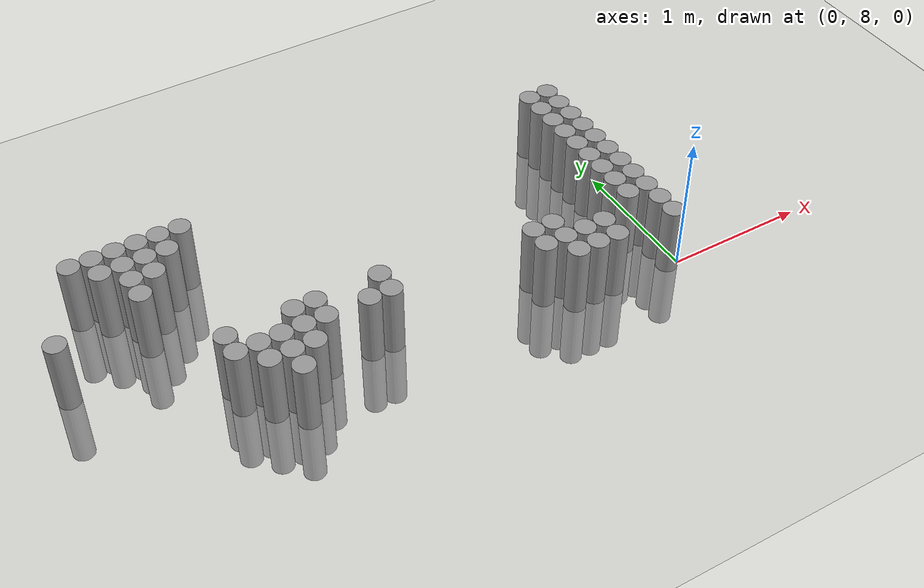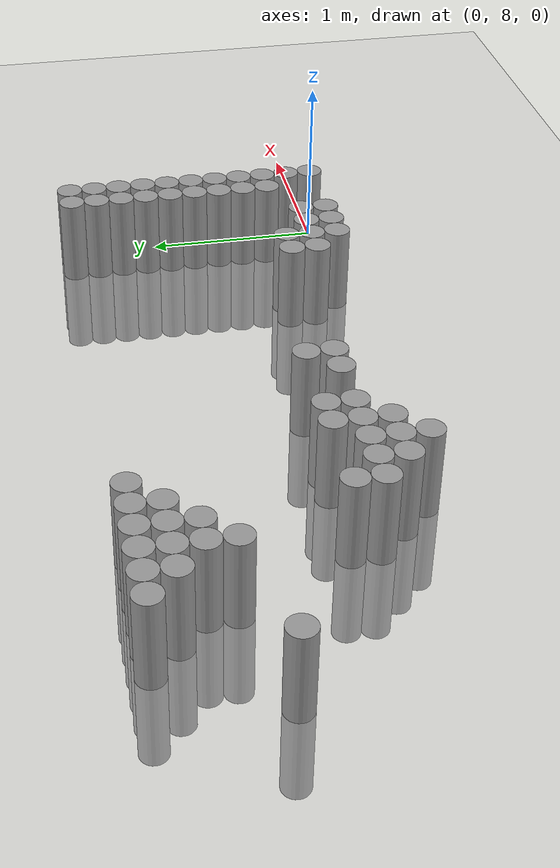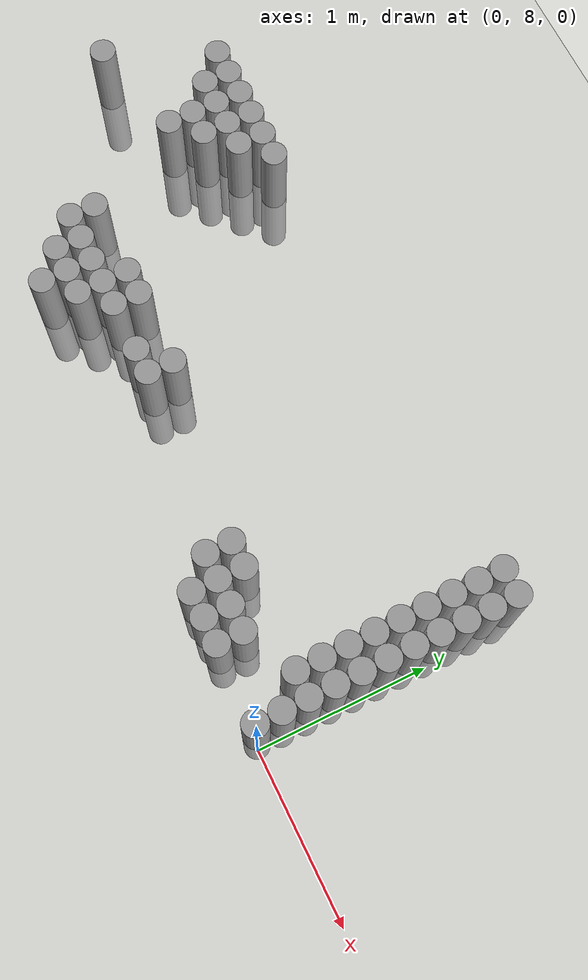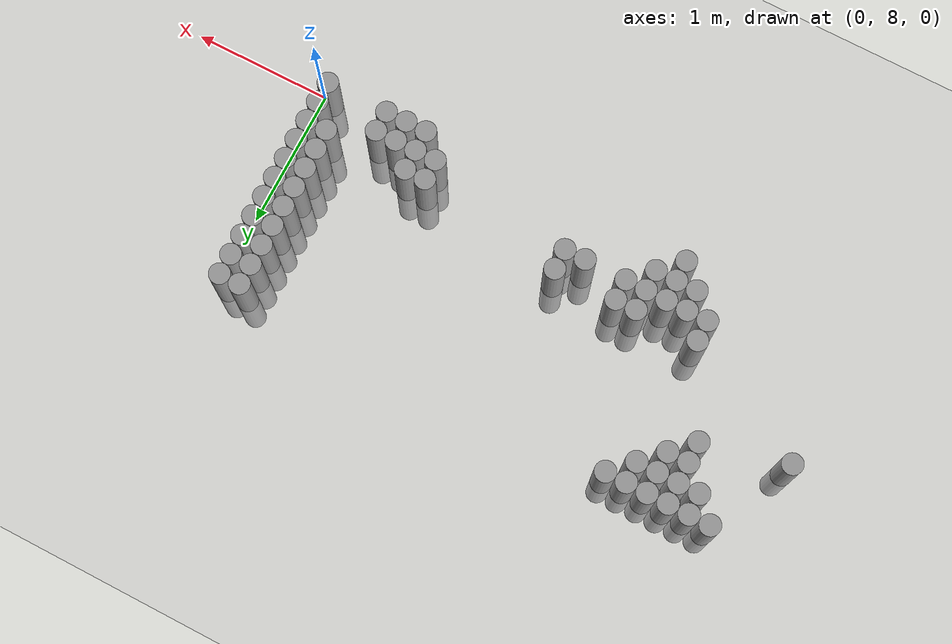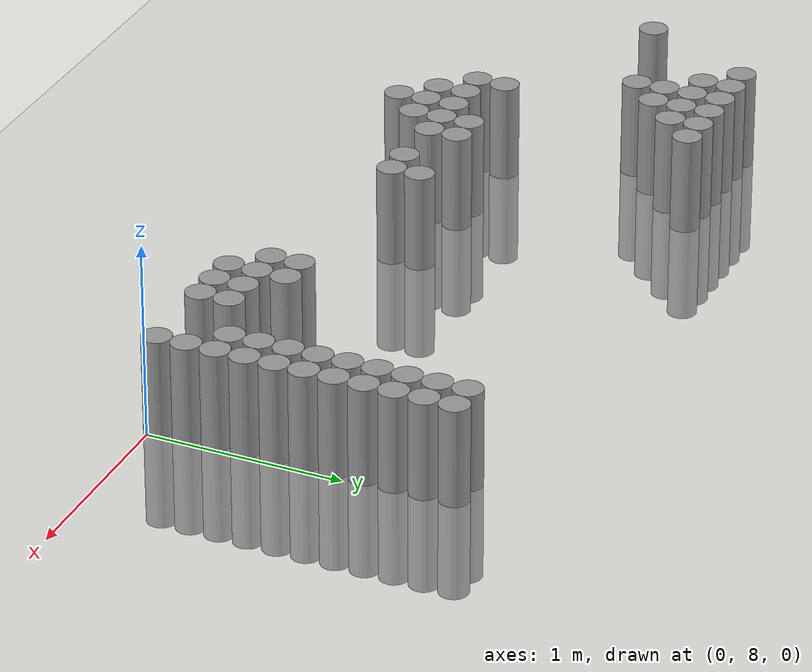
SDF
<sdf version="1.6">
 <world name="default">
  <model name="ground_plane">
   <static>1</static>
   <link name="link">
    <collision name="collision">
     <geometry><plane><normal>0 0 1</normal><size>100 100</size></plane></geometry>
     <surface><friction><ode><mu>100</mu><mu2>50</mu2></ode></friction></surface>
    </collision>
    <visual name="visual">
     <cast_shadows>0</cast_shadows>
     <geometry><plane><normal>0 0 1</normal><size>100 100</size></plane></geometry>
     <material>
      <script><uri>file://media/materials/scripts/gazebo.material</uri><name>Gazebo/Grey</name></script>
     </material>
    </visual>
   </link>
  </model>
  <model name="unit_cylinder_161">
   <pose>-3.975000 8.925000 0.000000 0.000000 0.000000 0.000000</pose>
   <link name="link">
    <inertial>
     <mass>1</mass>
     <inertia><ixx>0.145833</ixx><ixy>0</ixy><ixz>0</ixz><iyy>0.145833</iyy><iyz>0</iyz><izz>0.125</izz></inertia>
    </inertial>
    <collision name="collision">
     <geometry><cylinder><radius>0.075000</radius><length>1</length></cylinder></geometry>
    </collision>
    <visual name="visual">
     <geometry><cylinder><radius>0.075000</radius><length>1</length></cylinder></geometry>
     <material>
      <script><name>Gazebo/Grey</name><uri>file://media/materials/scripts/gazebo.material</uri></script>
     </material>
    </visual>
   </link>
  </model>
  <model name="unit_cylinder_173">
   <pose>-3.675000 9.525000 0.000000 0.000000 0.000000 0.000000</pose>
   <link name="link">
    <inertial>
     <mass>1</mass>
     <inertia><ixx>0.145833</ixx><ixy>0</ixy><ixz>0</ixz><iyy>0.145833</iyy><iyz>0</iyz><izz>0.125</izz></inertia>
    </inertial>
    <collision name="collision">
     <geometry><cylinder><radius>0.075000</radius><length>1</length></cylinder></geometry>
    </collision>
    <visual name="visual">
     <geometry><cylinder><radius>0.075000</radius><length>1</length></cylinder></geometry>
     <material>
      <script><name>Gazebo/Grey</name><uri>file://media/materials/scripts/gazebo.material</uri></script>
     </material>
    </visual>
   </link>
  </model>
  <model name="unit_cylinder_177">
   <pose>-3.525000 9.375000 0.000000 0.000000 0.000000 0.000000</pose>
   <link name="link">
    <inertial>
     <mass>1</mass>
     <inertia><ixx>0.145833</ixx><ixy>0</ixy><ixz>0</ixz><iyy>0.145833</iyy><iyz>0</iyz><izz>0.125</izz></inertia>
    </inertial>
    <collision name="collision">
     <geometry><cylinder><radius>0.075000</radius><length>1</length></cylinder></geometry>
    </collision>
    <visual name="visual">
     <geometry><cylinder><radius>0.075000</radius><length>1</length></cylinder></geometry>
     <material>
      <script><name>Gazebo/Grey</name><uri>file://media/materials/scripts/gazebo.material</uri></script>
     </material>
    </visual>
   </link>
  </model>
  <model name="unit_cylinder_178">
   <pose>-3.525000 9.525000 0.000000 0.000000 0.000000 0.000000</pose>
   <link name="link">
    <inertial>
     <mass>1</mass>
     <inertia><ixx>0.145833</ixx><ixy>0</ixy><ixz>0</ixz><iyy>0.145833</iyy><iyz>0</iyz><izz>0.125</izz></inertia>
    </inertial>
    <collision name="collision">
     <geometry><cylinder><radius>0.075000</radius><length>1</length></cylinder></geometry>
    </collision>
    <visual name="visual">
     <geometry><cylinder><radius>0.075000</radius><length>1</length></cylinder></geometry>
     <material>
      <script><name>Gazebo/Grey</name><uri>file://media/materials/scripts/gazebo.material</uri></script>
     </material>
    </visual>
   </link>
  </model>
  <model name="unit_cylinder_181">
   <pose>-3.375000 9.075000 0.000000 0.000000 0.000000 0.000000</pose>
   <link name="link">
    <inertial>
     <mass>1</mass>
     <inertia><ixx>0.145833</ixx><ixy>0</ixy><ixz>0</ixz><iyy>0.145833</iyy><iyz>0</iyz><izz>0.125</izz></inertia>
    </inertial>
    <collision name="collision">
     <geometry><cylinder><radius>0.075000</radius><length>1</length></cylinder></geometry>
    </collision>
    <visual name="visual">
     <geometry><cylinder><radius>0.075000</radius><length>1</length></cylinder></geometry>
     <material>
      <script><name>Gazebo/Grey</name><uri>file://media/materials/scripts/gazebo.material</uri></script>
     </material>
    </visual>
   </link>
  </model>
  <model name="unit_cylinder_182">
   <pose>-3.375000 9.225000 0.000000 0.000000 0.000000 0.000000</pose>
   <link name="link">
    <inertial>
     <mass>1</mass>
     <inertia><ixx>0.145833</ixx><ixy>0</ixy><ixz>0</ixz><iyy>0.145833</iyy><iyz>0</iyz><izz>0.125</izz></inertia>
    </inertial>
    <collision name="collision">
     <geometry><cylinder><radius>0.075000</radius><length>1</length></cylinder></geometry>
    </collision>
    <visual name="visual">
     <geometry><cylinder><radius>0.075000</radius><length>1</length></cylinder></geometry>
     <material>
      <script><name>Gazebo/Grey</name><uri>file://media/materials/scripts/gazebo.material</uri></script>
     </material>
    </visual>
   </link>
  </model>
  <model name="unit_cylinder_183">
   <pose>-3.375000 9.375000 0.000000 0.000000 0.000000 0.000000</pose>
   <link name="link">
    <inertial>
     <mass>1</mass>
     <inertia><ixx>0.145833</ixx><ixy>0</ixy><ixz>0</ixz><iyy>0.145833</iyy><iyz>0</iyz><izz>0.125</izz></inertia>
    </inertial>
    <collision name="collision">
     <geometry><cylinder><radius>0.075000</radius><length>1</length></cylinder></geometry>
    </collision>
    <visual name="visual">
     <geometry><cylinder><radius>0.075000</radius><length>1</length></cylinder></geometry>
     <material>
      <script><name>Gazebo/Grey</name><uri>file://media/materials/scripts/gazebo.material</uri></script>
     </material>
    </visual>
   </link>
  </model>
  <model name="unit_cylinder_184">
   <pose>-3.375000 9.525000 0.000000 0.000000 0.000000 0.000000</pose>
   <link name="link">
    <inertial>
     <mass>1</mass>
     <inertia><ixx>0.145833</ixx><ixy>0</ixy><ixz>0</ixz><iyy>0.145833</iyy><iyz>0</iyz><izz>0.125</izz></inertia>
    </inertial>
    <collision name="collision">
     <geometry><cylinder><radius>0.075000</radius><length>1</length></cylinder></geometry>
    </collision>
    <visual name="visual">
     <geometry><cylinder><radius>0.075000</radius><length>1</length></cylinder></geometry>
     <material>
      <script><name>Gazebo/Grey</name><uri>file://media/materials/scripts/gazebo.material</uri></script>
     </material>
    </visual>
   </link>
  </model>
  <model name="unit_cylinder_185">
   <pose>-3.225000 9.225000 0.000000 0.000000 0.000000 0.000000</pose>
   <link name="link">
    <inertial>
     <mass>1</mass>
     <inertia><ixx>0.145833</ixx><ixy>0</ixy><ixz>0</ixz><iyy>0.145833</iyy><iyz>0</iyz><izz>0.125</izz></inertia>
    </inertial>
    <collision name="collision">
     <geometry><cylinder><radius>0.075000</radius><length>1</length></cylinder></geometry>
    </collision>
    <visual name="visual">
     <geometry><cylinder><radius>0.075000</radius><length>1</length></cylinder></geometry>
     <material>
      <script><name>Gazebo/Grey</name><uri>file://media/materials/scripts/gazebo.material</uri></script>
     </material>
    </visual>
   </link>
  </model>
  <model name="unit_cylinder_186">
   <pose>-3.225000 9.375000 0.000000 0.000000 0.000000 0.000000</pose>
   <link name="link">
    <inertial>
     <mass>1</mass>
     <inertia><ixx>0.145833</ixx><ixy>0</ixy><ixz>0</ixz><iyy>0.145833</iyy><iyz>0</iyz><izz>0.125</izz></inertia>
    </inertial>
    <collision name="collision">
     <geometry><cylinder><radius>0.075000</radius><length>1</length></cylinder></geometry>
    </collision>
    <visual name="visual">
     <geometry><cylinder><radius>0.075000</radius><length>1</length></cylinder></geometry>
     <material>
      <script><name>Gazebo/Grey</name><uri>file://media/materials/scripts/gazebo.material</uri></script>
     </material>
    </visual>
   </link>
  </model>
  <model name="unit_cylinder_187">
   <pose>-3.225000 9.525000 0.000000 0.000000 0.000000 0.000000</pose>
   <link name="link">
    <inertial>
     <mass>1</mass>
     <inertia><ixx>0.145833</ixx><ixy>0</ixy><ixz>0</ixz><iyy>0.145833</iyy><iyz>0</iyz><izz>0.125</izz></inertia>
    </inertial>
    <collision name="collision">
     <geometry><cylinder><radius>0.075000</radius><length>1</length></cylinder></geometry>
    </collision>
    <visual name="visual">
     <geometry><cylinder><radius>0.075000</radius><length>1</length></cylinder></geometry>
     <material>
      <script><name>Gazebo/Grey</name><uri>file://media/materials/scripts/gazebo.material</uri></script>
     </material>
    </visual>
   </link>
  </model>
  <model name="unit_cylinder_188">
   <pose>-3.075000 8.325000 0.000000 0.000000 0.000000 0.000000</pose>
   <link name="link">
    <inertial>
     <mass>1</mass>
     <inertia><ixx>0.145833</ixx><ixy>0</ixy><ixz>0</ixz><iyy>0.145833</iyy><iyz>0</iyz><izz>0.125</izz></inertia>
    </inertial>
    <collision name="collision">
     <geometry><cylinder><radius>0.075000</radius><length>1</length></cylinder></geometry>
    </collision>
    <visual name="visual">
     <geometry><cylinder><radius>0.075000</radius><length>1</length></cylinder></geometry>
     <material>
      <script><name>Gazebo/Grey</name><uri>file://media/materials/scripts/gazebo.material</uri></script>
     </material>
    </visual>
   </link>
  </model>
  <model name="unit_cylinder_189">
   <pose>-3.075000 8.475000 0.000000 0.000000 0.000000 0.000000</pose>
   <link name="link">
    <inertial>
     <mass>1</mass>
     <inertia><ixx>0.145833</ixx><ixy>0</ixy><ixz>0</ixz><iyy>0.145833</iyy><iyz>0</iyz><izz>0.125</izz></inertia>
    </inertial>
    <collision name="collision">
     <geometry><cylinder><radius>0.075000</radius><length>1</length></cylinder></geometry>
    </collision>
    <visual name="visual">
     <geometry><cylinder><radius>0.075000</radius><length>1</length></cylinder></geometry>
     <material>
      <script><name>Gazebo/Grey</name><uri>file://media/materials/scripts/gazebo.material</uri></script>
     </material>
    </visual>
   </link>
  </model>
  <model name="unit_cylinder_190">
   <pose>-3.075000 9.375000 0.000000 0.000000 0.000000 0.000000</pose>
   <link name="link">
    <inertial>
     <mass>1</mass>
     <inertia><ixx>0.145833</ixx><ixy>0</ixy><ixz>0</ixz><iyy>0.145833</iyy><iyz>0</iyz><izz>0.125</izz></inertia>
    </inertial>
    <collision name="collision">
     <geometry><cylinder><radius>0.075000</radius><length>1</length></cylinder></geometry>
    </collision>
    <visual name="visual">
     <geometry><cylinder><radius>0.075000</radius><length>1</length></cylinder></geometry>
     <material>
      <script><name>Gazebo/Grey</name><uri>file://media/materials/scripts/gazebo.material</uri></script>
     </material>
    </visual>
   </link>
  </model>
  <model name="unit_cylinder_191">
   <pose>-3.075000 9.525000 0.000000 0.000000 0.000000 0.000000</pose>
   <link name="link">
    <inertial>
     <mass>1</mass>
     <inertia><ixx>0.145833</ixx><ixy>0</ixy><ixz>0</ixz><iyy>0.145833</iyy><iyz>0</iyz><izz>0.125</izz></inertia>
    </inertial>
    <collision name="collision">
     <geometry><cylinder><radius>0.075000</radius><length>1</length></cylinder></geometry>
    </collision>
    <visual name="visual">
     <geometry><cylinder><radius>0.075000</radius><length>1</length></cylinder></geometry>
     <material>
      <script><name>Gazebo/Grey</name><uri>file://media/materials/scripts/gazebo.material</uri></script>
     </material>
    </visual>
   </link>
  </model>
  <model name="unit_cylinder_193">
   <pose>-2.925000 8.175000 0.000000 0.000000 0.000000 0.000000</pose>
   <link name="link">
    <inertial>
     <mass>1</mass>
     <inertia><ixx>0.145833</ixx><ixy>0</ixy><ixz>0</ixz><iyy>0.145833</iyy><iyz>0</iyz><izz>0.125</izz></inertia>
    </inertial>
    <collision name="collision">
     <geometry><cylinder><radius>0.075000</radius><length>1</length></cylinder></geometry>
    </collision>
    <visual name="visual">
     <geometry><cylinder><radius>0.075000</radius><length>1</length></cylinder></geometry>
     <material>
      <script><name>Gazebo/Grey</name><uri>file://media/materials/scripts/gazebo.material</uri></script>
     </material>
    </visual>
   </link>
  </model>
  <model name="unit_cylinder_194">
   <pose>-2.925000 8.325000 0.000000 0.000000 0.000000 0.000000</pose>
   <link name="link">
    <inertial>
     <mass>1</mass>
     <inertia><ixx>0.145833</ixx><ixy>0</ixy><ixz>0</ixz><iyy>0.145833</iyy><iyz>0</iyz><izz>0.125</izz></inertia>
    </inertial>
    <collision name="collision">
     <geometry><cylinder><radius>0.075000</radius><length>1</length></cylinder></geometry>
    </collision>
    <visual name="visual">
     <geometry><cylinder><radius>0.075000</radius><length>1</length></cylinder></geometry>
     <material>
      <script><name>Gazebo/Grey</name><uri>file://media/materials/scripts/gazebo.material</uri></script>
     </material>
    </visual>
   </link>
  </model>
  <model name="unit_cylinder_195">
   <pose>-2.925000 9.525000 0.000000 0.000000 0.000000 0.000000</pose>
   <link name="link">
    <inertial>
     <mass>1</mass>
     <inertia><ixx>0.145833</ixx><ixy>0</ixy><ixz>0</ixz><iyy>0.145833</iyy><iyz>0</iyz><izz>0.125</izz></inertia>
    </inertial>
    <collision name="collision">
     <geometry><cylinder><radius>0.075000</radius><length>1</length></cylinder></geometry>
    </collision>
    <visual name="visual">
     <geometry><cylinder><radius>0.075000</radius><length>1</length></cylinder></geometry>
     <material>
      <script><name>Gazebo/Grey</name><uri>file://media/materials/scripts/gazebo.material</uri></script>
     </material>
    </visual>
   </link>
  </model>
  <model name="unit_cylinder_196">
   <pose>-2.775000 8.025000 0.000000 0.000000 0.000000 0.000000</pose>
   <link name="link">
    <inertial>
     <mass>1</mass>
     <inertia><ixx>0.145833</ixx><ixy>0</ixy><ixz>0</ixz><iyy>0.145833</iyy><iyz>0</iyz><izz>0.125</izz></inertia>
    </inertial>
    <collision name="collision">
     <geometry><cylinder><radius>0.075000</radius><length>1</length></cylinder></geometry>
    </collision>
    <visual name="visual">
     <geometry><cylinder><radius>0.075000</radius><length>1</length></cylinder></geometry>
     <material>
      <script><name>Gazebo/Grey</name><uri>file://media/materials/scripts/gazebo.material</uri></script>
     </material>
    </visual>
   </link>
  </model>
  <model name="unit_cylinder_197">
   <pose>-2.775000 8.175000 0.000000 0.000000 0.000000 0.000000</pose>
   <link name="link">
    <inertial>
     <mass>1</mass>
     <inertia><ixx>0.145833</ixx><ixy>0</ixy><ixz>0</ixz><iyy>0.145833</iyy><iyz>0</iyz><izz>0.125</izz></inertia>
    </inertial>
    <collision name="collision">
     <geometry><cylinder><radius>0.075000</radius><length>1</length></cylinder></geometry>
    </collision>
    <visual name="visual">
     <geometry><cylinder><radius>0.075000</radius><length>1</length></cylinder></geometry>
     <material>
      <script><name>Gazebo/Grey</name><uri>file://media/materials/scripts/gazebo.material</uri></script>
     </material>
    </visual>
   </link>
  </model>
  <model name="unit_cylinder_198">
   <pose>-2.775000 8.325000 0.000000 0.000000 0.000000 0.000000</pose>
   <link name="link">
    <inertial>
     <mass>1</mass>
     <inertia><ixx>0.145833</ixx><ixy>0</ixy><ixz>0</ixz><iyy>0.145833</iyy><iyz>0</iyz><izz>0.125</izz></inertia>
    </inertial>
    <collision name="collision">
     <geometry><cylinder><radius>0.075000</radius><length>1</length></cylinder></geometry>
    </collision>
    <visual name="visual">
     <geometry><cylinder><radius>0.075000</radius><length>1</length></cylinder></geometry>
     <material>
      <script><name>Gazebo/Grey</name><uri>file://media/materials/scripts/gazebo.material</uri></script>
     </material>
    </visual>
   </link>
  </model>
  <model name="unit_cylinder_199">
   <pose>-2.625000 8.175000 0.000000 0.000000 0.000000 0.000000</pose>
   <link name="link">
    <inertial>
     <mass>1</mass>
     <inertia><ixx>0.145833</ixx><ixy>0</ixy><ixz>0</ixz><iyy>0.145833</iyy><iyz>0</iyz><izz>0.125</izz></inertia>
    </inertial>
    <collision name="collision">
     <geometry><cylinder><radius>0.075000</radius><length>1</length></cylinder></geometry>
    </collision>
    <visual name="visual">
     <geometry><cylinder><radius>0.075000</radius><length>1</length></cylinder></geometry>
     <material>
      <script><name>Gazebo/Grey</name><uri>file://media/materials/scripts/gazebo.material</uri></script>
     </material>
    </visual>
   </link>
  </model>
  <model name="unit_cylinder_200">
   <pose>-2.625000 8.325000 0.000000 0.000000 0.000000 0.000000</pose>
   <link name="link">
    <inertial>
     <mass>1</mass>
     <inertia><ixx>0.145833</ixx><ixy>0</ixy><ixz>0</ixz><iyy>0.145833</iyy><iyz>0</iyz><izz>0.125</izz></inertia>
    </inertial>
    <collision name="collision">
     <geometry><cylinder><radius>0.075000</radius><length>1</length></cylinder></geometry>
    </collision>
    <visual name="visual">
     <geometry><cylinder><radius>0.075000</radius><length>1</length></cylinder></geometry>
     <material>
      <script><name>Gazebo/Grey</name><uri>file://media/materials/scripts/gazebo.material</uri></script>
     </material>
    </visual>
   </link>
  </model>
  <model name="unit_cylinder_201">
   <pose>-2.625000 8.475000 0.000000 0.000000 0.000000 0.000000</pose>
   <link name="link">
    <inertial>
     <mass>1</mass>
     <inertia><ixx>0.145833</ixx><ixy>0</ixy><ixz>0</ixz><iyy>0.145833</iyy><iyz>0</iyz><izz>0.125</izz></inertia>
    </inertial>
    <collision name="collision">
     <geometry><cylinder><radius>0.075000</radius><length>1</length></cylinder></geometry>
    </collision>
    <visual name="visual">
     <geometry><cylinder><radius>0.075000</radius><length>1</length></cylinder></geometry>
     <material>
      <script><name>Gazebo/Grey</name><uri>file://media/materials/scripts/gazebo.material</uri></script>
     </material>
    </visual>
   </link>
  </model>
  <model name="unit_cylinder_202">
   <pose>-2.475000 8.325000 0.000000 0.000000 0.000000 0.000000</pose>
   <link name="link">
    <inertial>
     <mass>1</mass>
     <inertia><ixx>0.145833</ixx><ixy>0</ixy><ixz>0</ixz><iyy>0.145833</iyy><iyz>0</iyz><izz>0.125</izz></inertia>
    </inertial>
    <collision name="collision">
     <geometry><cylinder><radius>0.075000</radius><length>1</length></cylinder></geometry>
    </collision>
    <visual name="visual">
     <geometry><cylinder><radius>0.075000</radius><length>1</length></cylinder></geometry>
     <material>
      <script><name>Gazebo/Grey</name><uri>file://media/materials/scripts/gazebo.material</uri></script>
     </material>
    </visual>
   </link>
  </model>
  <model name="unit_cylinder_203">
   <pose>-2.475000 8.475000 0.000000 0.000000 0.000000 0.000000</pose>
   <link name="link">
    <inertial>
     <mass>1</mass>
     <inertia><ixx>0.145833</ixx><ixy>0</ixy><ixz>0</ixz><iyy>0.145833</iyy><iyz>0</iyz><izz>0.125</izz></inertia>
    </inertial>
    <collision name="collision">
     <geometry><cylinder><radius>0.075000</radius><length>1</length></cylinder></geometry>
    </collision>
    <visual name="visual">
     <geometry><cylinder><radius>0.075000</radius><length>1</length></cylinder></geometry>
     <material>
      <script><name>Gazebo/Grey</name><uri>file://media/materials/scripts/gazebo.material</uri></script>
     </material>
    </visual>
   </link>
  </model>
  <model name="unit_cylinder_207">
   <pose>-2.175000 8.325000 0.000000 0.000000 0.000000 0.000000</pose>
   <link name="link">
    <inertial>
     <mass>1</mass>
     <inertia><ixx>0.145833</ixx><ixy>0</ixy><ixz>0</ixz><iyy>0.145833</iyy><iyz>0</iyz><izz>0.125</izz></inertia>
    </inertial>
    <collision name="collision">
     <geometry><cylinder><radius>0.075000</radius><length>1</length></cylinder></geometry>
    </collision>
    <visual name="visual">
     <geometry><cylinder><radius>0.075000</radius><length>1</length></cylinder></geometry>
     <material>
      <script><name>Gazebo/Grey</name><uri>file://media/materials/scripts/gazebo.material</uri></script>
     </material>
    </visual>
   </link>
  </model>
  <model name="unit_cylinder_210">
   <pose>-2.025000 8.325000 0.000000 0.000000 0.000000 0.000000</pose>
   <link name="link">
    <inertial>
     <mass>1</mass>
     <inertia><ixx>0.145833</ixx><ixy>0</ixy><ixz>0</ixz><iyy>0.145833</iyy><iyz>0</iyz><izz>0.125</izz></inertia>
    </inertial>
    <collision name="collision">
     <geometry><cylinder><radius>0.075000</radius><length>1</length></cylinder></geometry>
    </collision>
    <visual name="visual">
     <geometry><cylinder><radius>0.075000</radius><length>1</length></cylinder></geometry>
     <material>
      <script><name>Gazebo/Grey</name><uri>file://media/materials/scripts/gazebo.material</uri></script>
     </material>
    </visual>
   </link>
  </model>
  <model name="unit_cylinder_211">
   <pose>-2.025000 8.475000 0.000000 0.000000 0.000000 0.000000</pose>
   <link name="link">
    <inertial>
     <mass>1</mass>
     <inertia><ixx>0.145833</ixx><ixy>0</ixy><ixz>0</ixz><iyy>0.145833</iyy><iyz>0</iyz><izz>0.125</izz></inertia>
    </inertial>
    <collision name="collision">
     <geometry><cylinder><radius>0.075000</radius><length>1</length></cylinder></geometry>
    </collision>
    <visual name="visual">
     <geometry><cylinder><radius>0.075000</radius><length>1</length></cylinder></geometry>
     <material>
      <script><name>Gazebo/Grey</name><uri>file://media/materials/scripts/gazebo.material</uri></script>
     </material>
    </visual>
   </link>
  </model>
  <model name="unit_cylinder_224">
   <pose>-0.975000 8.175000 0.000000 0.000000 0.000000 0.000000</pose>
   <link name="link">
    <inertial>
     <mass>1</mass>
     <inertia><ixx>0.145833</ixx><ixy>0</ixy><ixz>0</ixz><iyy>0.145833</iyy><iyz>0</iyz><izz>0.125</izz></inertia>
    </inertial>
    <collision name="collision">
     <geometry><cylinder><radius>0.075000</radius><length>1</length></cylinder></geometry>
    </collision>
    <visual name="visual">
     <geometry><cylinder><radius>0.075000</radius><length>1</length></cylinder></geometry>
     <material>
      <script><name>Gazebo/Grey</name><uri>file://media/materials/scripts/gazebo.material</uri></script>
     </material>
    </visual>
   </link>
  </model>
  <model name="unit_cylinder_225">
   <pose>-0.975000 8.325000 0.000000 0.000000 0.000000 0.000000</pose>
   <link name="link">
    <inertial>
     <mass>1</mass>
     <inertia><ixx>0.145833</ixx><ixy>0</ixy><ixz>0</ixz><iyy>0.145833</iyy><iyz>0</iyz><izz>0.125</izz></inertia>
    </inertial>
    <collision name="collision">
     <geometry><cylinder><radius>0.075000</radius><length>1</length></cylinder></geometry>
    </collision>
    <visual name="visual">
     <geometry><cylinder><radius>0.075000</radius><length>1</length></cylinder></geometry>
     <material>
      <script><name>Gazebo/Grey</name><uri>file://media/materials/scripts/gazebo.material</uri></script>
     </material>
    </visual>
   </link>
  </model>
  <model name="unit_cylinder_228">
   <pose>-0.825000 8.025000 0.000000 0.000000 0.000000 0.000000</pose>
   <link name="link">
    <inertial>
     <mass>1</mass>
     <inertia><ixx>0.145833</ixx><ixy>0</ixy><ixz>0</ixz><iyy>0.145833</iyy><iyz>0</iyz><izz>0.125</izz></inertia>
    </inertial>
    <collision name="collision">
     <geometry><cylinder><radius>0.075000</radius><length>1</length></cylinder></geometry>
    </collision>
    <visual name="visual">
     <geometry><cylinder><radius>0.075000</radius><length>1</length></cylinder></geometry>
     <material>
      <script><name>Gazebo/Grey</name><uri>file://media/materials/scripts/gazebo.material</uri></script>
     </material>
    </visual>
   </link>
  </model>
  <model name="unit_cylinder_229">
   <pose>-0.825000 8.175000 0.000000 0.000000 0.000000 0.000000</pose>
   <link name="link">
    <inertial>
     <mass>1</mass>
     <inertia><ixx>0.145833</ixx><ixy>0</ixy><ixz>0</ixz><iyy>0.145833</iyy><iyz>0</iyz><izz>0.125</izz></inertia>
    </inertial>
    <collision name="collision">
     <geometry><cylinder><radius>0.075000</radius><length>1</length></cylinder></geometry>
    </collision>
    <visual name="visual">
     <geometry><cylinder><radius>0.075000</radius><length>1</length></cylinder></geometry>
     <material>
      <script><name>Gazebo/Grey</name><uri>file://media/materials/scripts/gazebo.material</uri></script>
     </material>
    </visual>
   </link>
  </model>
  <model name="unit_cylinder_230">
   <pose>-0.825000 8.325000 0.000000 0.000000 0.000000 0.000000</pose>
   <link name="link">
    <inertial>
     <mass>1</mass>
     <inertia><ixx>0.145833</ixx><ixy>0</ixy><ixz>0</ixz><iyy>0.145833</iyy><iyz>0</iyz><izz>0.125</izz></inertia>
    </inertial>
    <collision name="collision">
     <geometry><cylinder><radius>0.075000</radius><length>1</length></cylinder></geometry>
    </collision>
    <visual name="visual">
     <geometry><cylinder><radius>0.075000</radius><length>1</length></cylinder></geometry>
     <material>
      <script><name>Gazebo/Grey</name><uri>file://media/materials/scripts/gazebo.material</uri></script>
     </material>
    </visual>
   </link>
  </model>
  <model name="unit_cylinder_233">
   <pose>-0.675000 8.025000 0.000000 0.000000 0.000000 0.000000</pose>
   <link name="link">
    <inertial>
     <mass>1</mass>
     <inertia><ixx>0.145833</ixx><ixy>0</ixy><ixz>0</ixz><iyy>0.145833</iyy><iyz>0</iyz><izz>0.125</izz></inertia>
    </inertial>
    <collision name="collision">
     <geometry><cylinder><radius>0.075000</radius><length>1</length></cylinder></geometry>
    </collision>
    <visual name="visual">
     <geometry><cylinder><radius>0.075000</radius><length>1</length></cylinder></geometry>
     <material>
      <script><name>Gazebo/Grey</name><uri>file://media/materials/scripts/gazebo.material</uri></script>
     </material>
    </visual>
   </link>
  </model>
  <model name="unit_cylinder_234">
   <pose>-0.675000 8.175000 0.000000 0.000000 0.000000 0.000000</pose>
   <link name="link">
    <inertial>
     <mass>1</mass>
     <inertia><ixx>0.145833</ixx><ixy>0</ixy><ixz>0</ixz><iyy>0.145833</iyy><iyz>0</iyz><izz>0.125</izz></inertia>
    </inertial>
    <collision name="collision">
     <geometry><cylinder><radius>0.075000</radius><length>1</length></cylinder></geometry>
    </collision>
    <visual name="visual">
     <geometry><cylinder><radius>0.075000</radius><length>1</length></cylinder></geometry>
     <material>
      <script><name>Gazebo/Grey</name><uri>file://media/materials/scripts/gazebo.material</uri></script>
     </material>
    </visual>
   </link>
  </model>
  <model name="unit_cylinder_240">
   <pose>-0.525000 8.025000 0.000000 0.000000 0.000000 0.000000</pose>
   <link name="link">
    <inertial>
     <mass>1</mass>
     <inertia><ixx>0.145833</ixx><ixy>0</ixy><ixz>0</ixz><iyy>0.145833</iyy><iyz>0</iyz><izz>0.125</izz></inertia>
    </inertial>
    <collision name="collision">
     <geometry><cylinder><radius>0.075000</radius><length>1</length></cylinder></geometry>
    </collision>
    <visual name="visual">
     <geometry><cylinder><radius>0.075000</radius><length>1</length></cylinder></geometry>
     <material>
      <script><name>Gazebo/Grey</name><uri>file://media/materials/scripts/gazebo.material</uri></script>
     </material>
    </visual>
   </link>
  </model>
  <model name="unit_cylinder_241">
   <pose>-0.525000 8.175000 0.000000 0.000000 0.000000 0.000000</pose>
   <link name="link">
    <inertial>
     <mass>1</mass>
     <inertia><ixx>0.145833</ixx><ixy>0</ixy><ixz>0</ixz><iyy>0.145833</iyy><iyz>0</iyz><izz>0.125</izz></inertia>
    </inertial>
    <collision name="collision">
     <geometry><cylinder><radius>0.075000</radius><length>1</length></cylinder></geometry>
    </collision>
    <visual name="visual">
     <geometry><cylinder><radius>0.075000</radius><length>1</length></cylinder></geometry>
     <material>
      <script><name>Gazebo/Grey</name><uri>file://media/materials/scripts/gazebo.material</uri></script>
     </material>
    </visual>
   </link>
  </model>
  <model name="unit_cylinder_251">
   <pose>-0.225000 8.325000 0.000000 0.000000 0.000000 0.000000</pose>
   <link name="link">
    <inertial>
     <mass>1</mass>
     <inertia><ixx>0.145833</ixx><ixy>0</ixy><ixz>0</ixz><iyy>0.145833</iyy><iyz>0</iyz><izz>0.125</izz></inertia>
    </inertial>
    <collision name="collision">
     <geometry><cylinder><radius>0.075000</radius><length>1</length></cylinder></geometry>
    </collision>
    <visual name="visual">
     <geometry><cylinder><radius>0.075000</radius><length>1</length></cylinder></geometry>
     <material>
      <script><name>Gazebo/Grey</name><uri>file://media/materials/scripts/gazebo.material</uri></script>
     </material>
    </visual>
   </link>
  </model>
  <model name="unit_cylinder_252">
   <pose>-0.225000 8.475000 0.000000 0.000000 0.000000 0.000000</pose>
   <link name="link">
    <inertial>
     <mass>1</mass>
     <inertia><ixx>0.145833</ixx><ixy>0</ixy><ixz>0</ixz><iyy>0.145833</iyy><iyz>0</iyz><izz>0.125</izz></inertia>
    </inertial>
    <collision name="collision">
     <geometry><cylinder><radius>0.075000</radius><length>1</length></cylinder></geometry>
    </collision>
    <visual name="visual">
     <geometry><cylinder><radius>0.075000</radius><length>1</length></cylinder></geometry>
     <material>
      <script><name>Gazebo/Grey</name><uri>file://media/materials/scripts/gazebo.material</uri></script>
     </material>
    </visual>
   </link>
  </model>
  <model name="unit_cylinder_253">
   <pose>-0.225000 8.625000 0.000000 0.000000 0.000000 0.000000</pose>
   <link name="link">
    <inertial>
     <mass>1</mass>
     <inertia><ixx>0.145833</ixx><ixy>0</ixy><ixz>0</ixz><iyy>0.145833</iyy><iyz>0</iyz><izz>0.125</izz></inertia>
    </inertial>
    <collision name="collision">
     <geometry><cylinder><radius>0.075000</radius><length>1</length></cylinder></geometry>
    </collision>
    <visual name="visual">
     <geometry><cylinder><radius>0.075000</radius><length>1</length></cylinder></geometry>
     <material>
      <script><name>Gazebo/Grey</name><uri>file://media/materials/scripts/gazebo.material</uri></script>
     </material>
    </visual>
   </link>
  </model>
  <model name="unit_cylinder_254">
   <pose>-0.225000 8.775000 0.000000 0.000000 0.000000 0.000000</pose>
   <link name="link">
    <inertial>
     <mass>1</mass>
     <inertia><ixx>0.145833</ixx><ixy>0</ixy><ixz>0</ixz><iyy>0.145833</iyy><iyz>0</iyz><izz>0.125</izz></inertia>
    </inertial>
    <collision name="collision">
     <geometry><cylinder><radius>0.075000</radius><length>1</length></cylinder></geometry>
    </collision>
    <visual name="visual">
     <geometry><cylinder><radius>0.075000</radius><length>1</length></cylinder></geometry>
     <material>
      <script><name>Gazebo/Grey</name><uri>file://media/materials/scripts/gazebo.material</uri></script>
     </material>
    </visual>
   </link>
  </model>
  <model name="unit_cylinder_255">
   <pose>-0.225000 8.925000 0.000000 0.000000 0.000000 0.000000</pose>
   <link name="link">
    <inertial>
     <mass>1</mass>
     <inertia><ixx>0.145833</ixx><ixy>0</ixy><ixz>0</ixz><iyy>0.145833</iyy><iyz>0</iyz><izz>0.125</izz></inertia>
    </inertial>
    <collision name="collision">
     <geometry><cylinder><radius>0.075000</radius><length>1</length></cylinder></geometry>
    </collision>
    <visual name="visual">
     <geometry><cylinder><radius>0.075000</radius><length>1</length></cylinder></geometry>
     <material>
      <script><name>Gazebo/Grey</name><uri>file://media/materials/scripts/gazebo.material</uri></script>
     </material>
    </visual>
   </link>
  </model>
  <model name="unit_cylinder_256">
   <pose>-0.225000 9.075000 0.000000 0.000000 0.000000 0.000000</pose>
   <link name="link">
    <inertial>
     <mass>1</mass>
     <inertia><ixx>0.145833</ixx><ixy>0</ixy><ixz>0</ixz><iyy>0.145833</iyy><iyz>0</iyz><izz>0.125</izz></inertia>
    </inertial>
    <collision name="collision">
     <geometry><cylinder><radius>0.075000</radius><length>1</length></cylinder></geometry>
    </collision>
    <visual name="visual">
     <geometry><cylinder><radius>0.075000</radius><length>1</length></cylinder></geometry>
     <material>
      <script><name>Gazebo/Grey</name><uri>file://media/materials/scripts/gazebo.material</uri></script>
     </material>
    </visual>
   </link>
  </model>
  <model name="unit_cylinder_257">
   <pose>-0.225000 9.225000 0.000000 0.000000 0.000000 0.000000</pose>
   <link name="link">
    <inertial>
     <mass>1</mass>
     <inertia><ixx>0.145833</ixx><ixy>0</ixy><ixz>0</ixz><iyy>0.145833</iyy><iyz>0</iyz><izz>0.125</izz></inertia>
    </inertial>
    <collision name="collision">
     <geometry><cylinder><radius>0.075000</radius><length>1</length></cylinder></geometry>
    </collision>
    <visual name="visual">
     <geometry><cylinder><radius>0.075000</radius><length>1</length></cylinder></geometry>
     <material>
      <script><name>Gazebo/Grey</name><uri>file://media/materials/scripts/gazebo.material</uri></script>
     </material>
    </visual>
   </link>
  </model>
  <model name="unit_cylinder_258">
   <pose>-0.225000 9.375000 0.000000 0.000000 0.000000 0.000000</pose>
   <link name="link">
    <inertial>
     <mass>1</mass>
     <inertia><ixx>0.145833</ixx><ixy>0</ixy><ixz>0</ixz><iyy>0.145833</iyy><iyz>0</iyz><izz>0.125</izz></inertia>
    </inertial>
    <collision name="collision">
     <geometry><cylinder><radius>0.075000</radius><length>1</length></cylinder></geometry>
    </collision>
    <visual name="visual">
     <geometry><cylinder><radius>0.075000</radius><length>1</length></cylinder></geometry>
     <material>
      <script><name>Gazebo/Grey</name><uri>file://media/materials/scripts/gazebo.material</uri></script>
     </material>
    </visual>
   </link>
  </model>
  <model name="unit_cylinder_259">
   <pose>-0.225000 9.525000 0.000000 0.000000 0.000000 0.000000</pose>
   <link name="link">
    <inertial>
     <mass>1</mass>
     <inertia><ixx>0.145833</ixx><ixy>0</ixy><ixz>0</ixz><iyy>0.145833</iyy><iyz>0</iyz><izz>0.125</izz></inertia>
    </inertial>
    <collision name="collision">
     <geometry><cylinder><radius>0.075000</radius><length>1</length></cylinder></geometry>
    </collision>
    <visual name="visual">
     <geometry><cylinder><radius>0.075000</radius><length>1</length></cylinder></geometry>
     <material>
      <script><name>Gazebo/Grey</name><uri>file://media/materials/scripts/gazebo.material</uri></script>
     </material>
    </visual>
   </link>
  </model>
  <model name="unit_cylinder_279">
   <pose>-0.075000 8.025000 0.000000 0.000000 0.000000 0.000000</pose>
   <link name="link">
    <inertial>
     <mass>1</mass>
     <inertia><ixx>0.145833</ixx><ixy>0</ixy><ixz>0</ixz><iyy>0.145833</iyy><iyz>0</iyz><izz>0.125</izz></inertia>
    </inertial>
    <collision name="collision">
     <geometry><cylinder><radius>0.075000</radius><length>1</length></cylinder></geometry>
    </collision>
    <visual name="visual">
     <geometry><cylinder><radius>0.075000</radius><length>1</length></cylinder></geometry>
     <material>
      <script><name>Gazebo/Grey</name><uri>file://media/materials/scripts/gazebo.material</uri></script>
     </material>
    </visual>
   </link>
  </model>
  <model name="unit_cylinder_280">
   <pose>-0.075000 8.175000 0.000000 0.000000 0.000000 0.000000</pose>
   <link name="link">
    <inertial>
     <mass>1</mass>
     <inertia><ixx>0.145833</ixx><ixy>0</ixy><ixz>0</ixz><iyy>0.145833</iyy><iyz>0</iyz><izz>0.125</izz></inertia>
    </inertial>
    <collision name="collision">
     <geometry><cylinder><radius>0.075000</radius><length>1</length></cylinder></geometry>
    </collision>
    <visual name="visual">
     <geometry><cylinder><radius>0.075000</radius><length>1</length></cylinder></geometry>
     <material>
      <script><name>Gazebo/Grey</name><uri>file://media/materials/scripts/gazebo.material</uri></script>
     </material>
    </visual>
   </link>
  </model>
  <model name="unit_cylinder_281">
   <pose>-0.075000 8.325000 0.000000 0.000000 0.000000 0.000000</pose>
   <link name="link">
    <inertial>
     <mass>1</mass>
     <inertia><ixx>0.145833</ixx><ixy>0</ixy><ixz>0</ixz><iyy>0.145833</iyy><iyz>0</iyz><izz>0.125</izz></inertia>
    </inertial>
    <collision name="collision">
     <geometry><cylinder><radius>0.075000</radius><length>1</length></cylinder></geometry>
    </collision>
    <visual name="visual">
     <geometry><cylinder><radius>0.075000</radius><length>1</length></cylinder></geometry>
     <material>
      <script><name>Gazebo/Grey</name><uri>file://media/materials/scripts/gazebo.material</uri></script>
     </material>
    </visual>
   </link>
  </model>
  <model name="unit_cylinder_282">
   <pose>-0.075000 8.475000 0.000000 0.000000 0.000000 0.000000</pose>
   <link name="link">
    <inertial>
     <mass>1</mass>
     <inertia><ixx>0.145833</ixx><ixy>0</ixy><ixz>0</ixz><iyy>0.145833</iyy><iyz>0</iyz><izz>0.125</izz></inertia>
    </inertial>
    <collision name="collision">
     <geometry><cylinder><radius>0.075000</radius><length>1</length></cylinder></geometry>
    </collision>
    <visual name="visual">
     <geometry><cylinder><radius>0.075000</radius><length>1</length></cylinder></geometry>
     <material>
      <script><name>Gazebo/Grey</name><uri>file://media/materials/scripts/gazebo.material</uri></script>
     </material>
    </visual>
   </link>
  </model>
  <model name="unit_cylinder_283">
   <pose>-0.075000 8.625000 0.000000 0.000000 0.000000 0.000000</pose>
   <link name="link">
    <inertial>
     <mass>1</mass>
     <inertia><ixx>0.145833</ixx><ixy>0</ixy><ixz>0</ixz><iyy>0.145833</iyy><iyz>0</iyz><izz>0.125</izz></inertia>
    </inertial>
    <collision name="collision">
     <geometry><cylinder><radius>0.075000</radius><length>1</length></cylinder></geometry>
    </collision>
    <visual name="visual">
     <geometry><cylinder><radius>0.075000</radius><length>1</length></cylinder></geometry>
     <material>
      <script><name>Gazebo/Grey</name><uri>file://media/materials/scripts/gazebo.material</uri></script>
     </material>
    </visual>
   </link>
  </model>
  <model name="unit_cylinder_284">
   <pose>-0.075000 8.775000 0.000000 0.000000 0.000000 0.000000</pose>
   <link name="link">
    <inertial>
     <mass>1</mass>
     <inertia><ixx>0.145833</ixx><ixy>0</ixy><ixz>0</ixz><iyy>0.145833</iyy><iyz>0</iyz><izz>0.125</izz></inertia>
    </inertial>
    <collision name="collision">
     <geometry><cylinder><radius>0.075000</radius><length>1</length></cylinder></geometry>
    </collision>
    <visual name="visual">
     <geometry><cylinder><radius>0.075000</radius><length>1</length></cylinder></geometry>
     <material>
      <script><name>Gazebo/Grey</name><uri>file://media/materials/scripts/gazebo.material</uri></script>
     </material>
    </visual>
   </link>
  </model>
  <model name="unit_cylinder_285">
   <pose>-0.075000 8.925000 0.000000 0.000000 0.000000 0.000000</pose>
   <link name="link">
    <inertial>
     <mass>1</mass>
     <inertia><ixx>0.145833</ixx><ixy>0</ixy><ixz>0</ixz><iyy>0.145833</iyy><iyz>0</iyz><izz>0.125</izz></inertia>
    </inertial>
    <collision name="collision">
     <geometry><cylinder><radius>0.075000</radius><length>1</length></cylinder></geometry>
    </collision>
    <visual name="visual">
     <geometry><cylinder><radius>0.075000</radius><length>1</length></cylinder></geometry>
     <material>
      <script><name>Gazebo/Grey</name><uri>file://media/materials/scripts/gazebo.material</uri></script>
     </material>
    </visual>
   </link>
  </model>
  <model name="unit_cylinder_286">
   <pose>-0.075000 9.075000 0.000000 0.000000 0.000000 0.000000</pose>
   <link name="link">
    <inertial>
     <mass>1</mass>
     <inertia><ixx>0.145833</ixx><ixy>0</ixy><ixz>0</ixz><iyy>0.145833</iyy><iyz>0</iyz><izz>0.125</izz></inertia>
    </inertial>
    <collision name="collision">
     <geometry><cylinder><radius>0.075000</radius><length>1</length></cylinder></geometry>
    </collision>
    <visual name="visual">
     <geometry><cylinder><radius>0.075000</radius><length>1</length></cylinder></geometry>
     <material>
      <script><name>Gazebo/Grey</name><uri>file://media/materials/scripts/gazebo.material</uri></script>
     </material>
    </visual>
   </link>
  </model>
  <model name="unit_cylinder_287">
   <pose>-0.075000 9.225000 0.000000 0.000000 0.000000 0.000000</pose>
   <link name="link">
    <inertial>
     <mass>1</mass>
     <inertia><ixx>0.145833</ixx><ixy>0</ixy><ixz>0</ixz><iyy>0.145833</iyy><iyz>0</iyz><izz>0.125</izz></inertia>
    </inertial>
    <collision name="collision">
     <geometry><cylinder><radius>0.075000</radius><length>1</length></cylinder></geometry>
    </collision>
    <visual name="visual">
     <geometry><cylinder><radius>0.075000</radius><length>1</length></cylinder></geometry>
     <material>
      <script><name>Gazebo/Grey</name><uri>file://media/materials/scripts/gazebo.material</uri></script>
     </material>
    </visual>
   </link>
  </model>
  <model name="unit_cylinder_288">
   <pose>-0.075000 9.375000 0.000000 0.000000 0.000000 0.000000</pose>
   <link name="link">
    <inertial>
     <mass>1</mass>
     <inertia><ixx>0.145833</ixx><ixy>0</ixy><ixz>0</ixz><iyy>0.145833</iyy><iyz>0</iyz><izz>0.125</izz></inertia>
    </inertial>
    <collision name="collision">
     <geometry><cylinder><radius>0.075000</radius><length>1</length></cylinder></geometry>
    </collision>
    <visual name="visual">
     <geometry><cylinder><radius>0.075000</radius><length>1</length></cylinder></geometry>
     <material>
      <script><name>Gazebo/Grey</name><uri>file://media/materials/scripts/gazebo.material</uri></script>
     </material>
    </visual>
   </link>
  </model>
  <model name="unit_cylinder_289">
   <pose>-0.075000 9.525000 0.000000 0.000000 0.000000 0.000000</pose>
   <link name="link">
    <inertial>
     <mass>1</mass>
     <inertia><ixx>0.145833</ixx><ixy>0</ixy><ixz>0</ixz><iyy>0.145833</iyy><iyz>0</iyz><izz>0.125</izz></inertia>
    </inertial>
    <collision name="collision">
     <geometry><cylinder><radius>0.075000</radius><length>1</length></cylinder></geometry>
    </collision>
    <visual name="visual">
     <geometry><cylinder><radius>0.075000</radius><length>1</length></cylinder></geometry>
     <material>
      <script><name>Gazebo/Grey</name><uri>file://media/materials/scripts/gazebo.material</uri></script>
     </material>
    </visual>
   </link>
  </model>
 </world>
</sdf>
